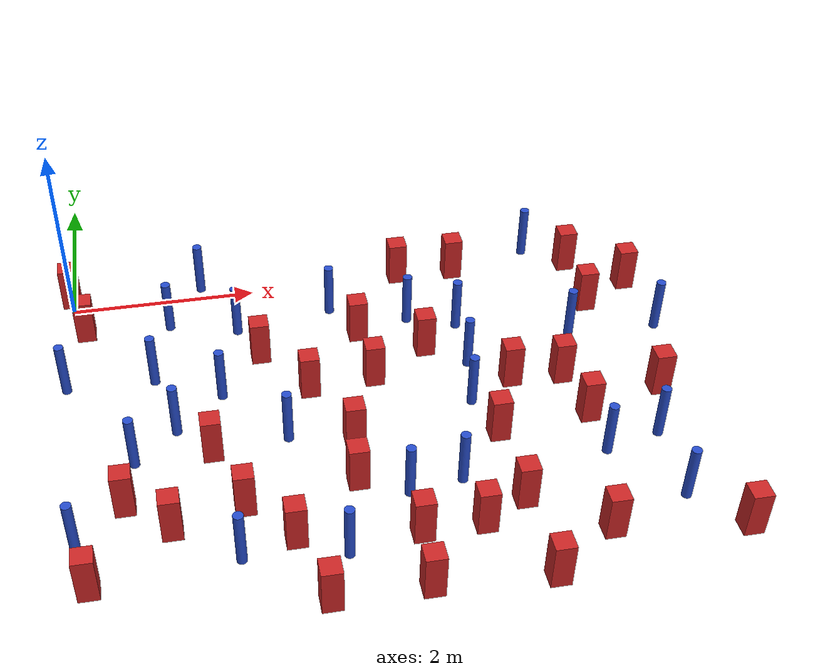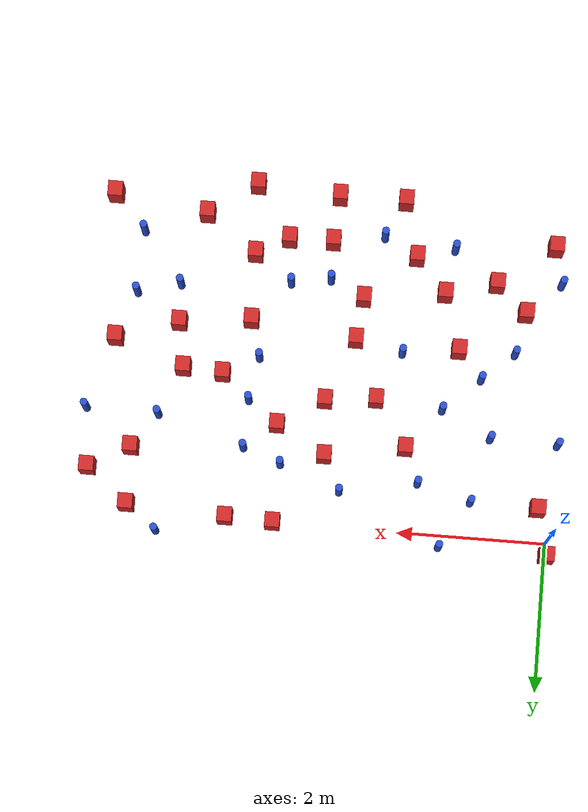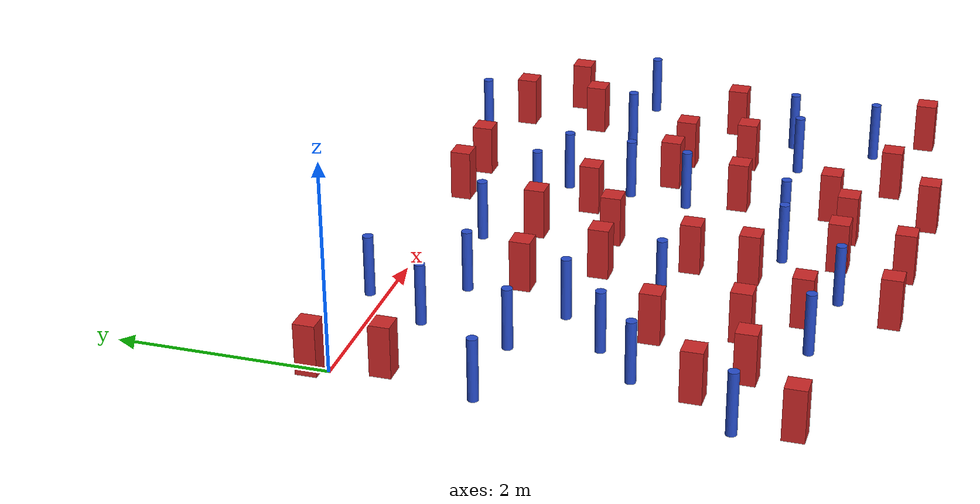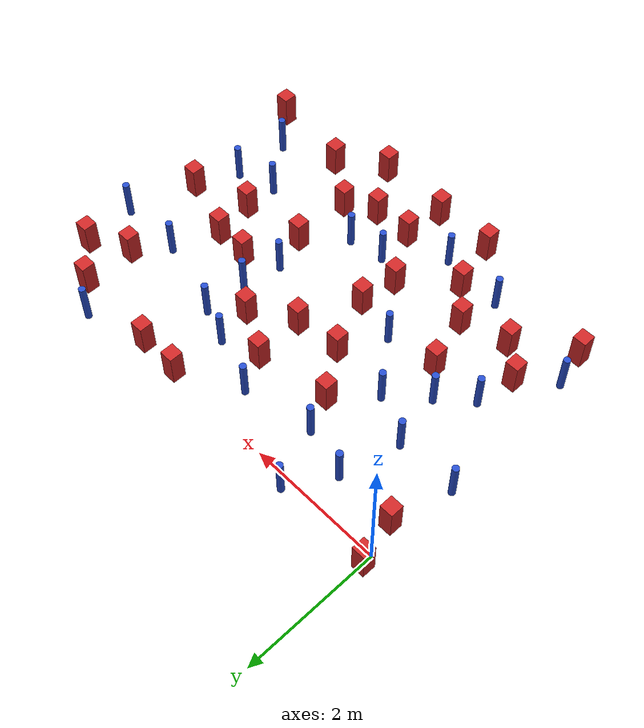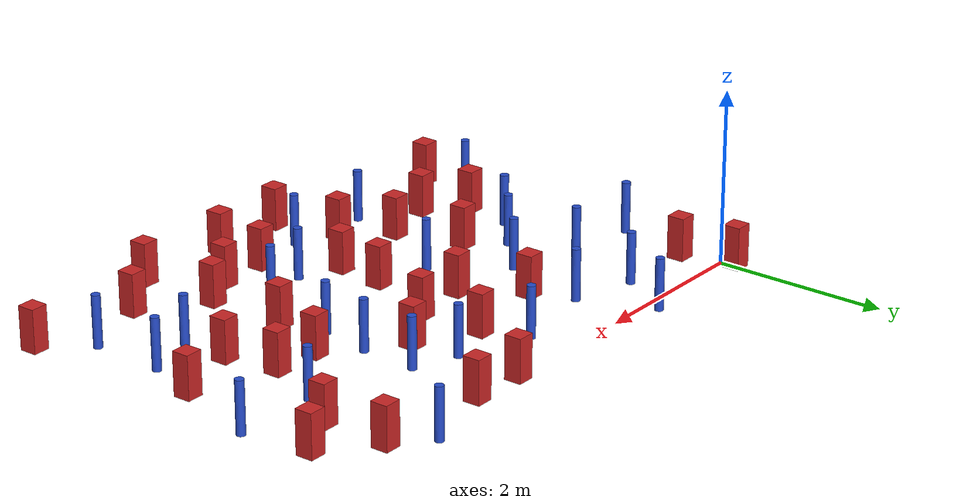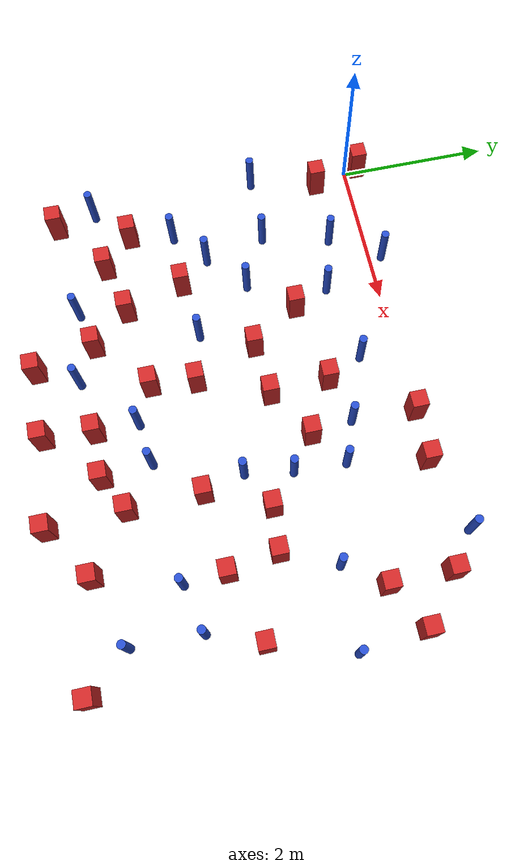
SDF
<sdf version="1.6">
 <model name="dense_13">
  <model name="square_post_obstacle4">
   <static>true</static>
   <pose>3.71863333824 -1.33802473438 1.91545236811e-07 -7.35059704564e-06 1.12565212e-07 2.39332434364e-05</pose>
   <link name="link">
    <pose>0 0 0.25 0 -0 0</pose>
    <inertial>
     <mass>100</mass>
     <inertia>
      <ixx>0.166667</ixx>
      <ixy>0</ixy>
      <ixz>0</ixz>
      <iyy>0.166667</iyy>
      <iyz>0</iyz>
      <izz>0.166667</izz>
     </inertia>
    </inertial>
    <collision name="collision"><geometry><box><size>.2 .2 .5</size></box></geometry></collision>
    <visual name="visual">
     <geometry><box><size>.2 .2 .5</size></box></geometry>
     <material>
      <script><name>Gazebo/Red</name><uri>file://media/materials/scripts/gazebo.material</uri></script>
     </material>
    </visual>
   </link>
  </model>
  <model name="square_post_obstacle7">
   <static>true</static>
   <pose>4.50447674542 -1.98061000335 1.91545236811e-07 -7.35059704564e-06 1.12565212e-07 2.39332434364e-05</pose>
   <link name="link">
    <pose>0 0 0.25 0 -0 0</pose>
    <inertial>
     <mass>100</mass>
     <inertia>
      <ixx>0.166667</ixx>
      <ixy>0</ixy>
      <ixz>0</ixz>
      <iyy>0.166667</iyy>
      <iyz>0</iyz>
      <izz>0.166667</izz>
     </inertia>
    </inertial>
    <collision name="collision"><geometry><box><size>.2 .2 .5</size></box></geometry></collision>
    <visual name="visual">
     <geometry><box><size>.2 .2 .5</size></box></geometry>
     <material>
      <script><name>Gazebo/Red</name><uri>file://media/materials/scripts/gazebo.material</uri></script>
     </material>
    </visual>
   </link>
  </model>
  <model name="pole_obstacle6">
   <static>true</static>
   <pose>-0.0801501112502 -1.33337683288 7.38925637345e-09 -8.47170692799e-08 1.24976765008e-08 -1.7451309302e-07</pose>
   <link name="link">
    <pose>0 0 0.3 0 -0 0</pose>
    <inertial>
     <mass>1</mass>
     <inertia><ixx>0.145833</ixx><ixy>0</ixy><ixz>0</ixz><iyy>0.145833</iyy><iyz>0</iyz><izz>0.125</izz></inertia>
    </inertial>
    <collision name="collision">
     <geometry><cylinder><radius>0.05</radius><length>.6</length></cylinder></geometry>
    </collision>
    <visual name="visual">
     <geometry><cylinder><radius>0.05</radius><length>.6</length></cylinder></geometry>
     <material>
      <script><name>Gazebo/Blue</name><uri>file://media/materials/scripts/gazebo.material</uri></script>
     </material>
    </visual>
   </link>
  </model>
  <model name="square_post_obstacle23">
   <static>true</static>
   <pose>4.17222592053 -2.74427034642 1.91545236811e-07 -7.35059704564e-06 1.12565212e-07 2.39332434364e-05</pose>
   <link name="link">
    <pose>0 0 0.25 0 -0 0</pose>
    <inertial>
     <mass>100</mass>
     <inertia>
      <ixx>0.166667</ixx>
      <ixy>0</ixy>
      <ixz>0</ixz>
      <iyy>0.166667</iyy>
      <iyz>0</iyz>
      <izz>0.166667</izz>
     </inertia>
    </inertial>
    <collision name="collision"><geometry><box><size>.2 .2 .5</size></box></geometry></collision>
    <visual name="visual">
     <geometry><box><size>.2 .2 .5</size></box></geometry>
     <material>
      <script><name>Gazebo/Red</name><uri>file://media/materials/scripts/gazebo.material</uri></script>
     </material>
    </visual>
   </link>
  </model>
  <model name="pole_obstacle22">
   <static>true</static>
   <pose>2.81704417577 -0.489775918221 7.38925637345e-09 -8.471706928e-08 1.2497676509e-08 -1.74513093016e-07</pose>
   <link name="link">
    <pose>0 0 0.3 0 -0 0</pose>
    <inertial>
     <mass>1</mass>
     <inertia><ixx>0.145833</ixx><ixy>0</ixy><ixz>0</ixz><iyy>0.145833</iyy><iyz>0</iyz><izz>0.125</izz></inertia>
    </inertial>
    <collision name="collision">
     <geometry><cylinder><radius>0.05</radius><length>.6</length></cylinder></geometry>
    </collision>
    <visual name="visual">
     <geometry><cylinder><radius>0.05</radius><length>.6</length></cylinder></geometry>
     <material>
      <script><name>Gazebo/Blue</name><uri>file://media/materials/scripts/gazebo.material</uri></script>
     </material>
    </visual>
   </link>
  </model>
  <model name="pole_obstacle23">
   <static>true</static>
   <pose>5.72053813355 -3.86543438608 7.38925637345e-09 -8.47170692798e-08 1.24976764937e-08 -1.74513093023e-07</pose>
   <link name="link">
    <pose>0 0 0.3 0 -0 0</pose>
    <inertial>
     <mass>1</mass>
     <inertia><ixx>0.145833</ixx><ixy>0</ixy><ixz>0</ixz><iyy>0.145833</iyy><iyz>0</iyz><izz>0.125</izz></inertia>
    </inertial>
    <collision name="collision">
     <geometry><cylinder><radius>0.05</radius><length>.6</length></cylinder></geometry>
    </collision>
    <visual name="visual">
     <geometry><cylinder><radius>0.05</radius><length>.6</length></cylinder></geometry>
     <material>
      <script><name>Gazebo/Blue</name><uri>file://media/materials/scripts/gazebo.material</uri></script>
     </material>
    </visual>
   </link>
  </model>
  <model name="pole_obstacle30">
   <static>true</static>
   <pose>2.09955300384 -2.43860249127 7.38925637345e-09 -8.47170692798e-08 1.24976764939e-08 -1.74513093025e-07</pose>
   <link name="link">
    <pose>0 0 0.3 0 -0 0</pose>
    <inertial>
     <mass>1</mass>
     <inertia><ixx>0.145833</ixx><ixy>0</ixy><ixz>0</ixz><iyy>0.145833</iyy><iyz>0</iyz><izz>0.125</izz></inertia>
    </inertial>
    <collision name="collision">
     <geometry><cylinder><radius>0.05</radius><length>.6</length></cylinder></geometry>
    </collision>
    <visual name="visual">
     <geometry><cylinder><radius>0.05</radius><length>.6</length></cylinder></geometry>
     <material>
      <script><name>Gazebo/Blue</name><uri>file://media/materials/scripts/gazebo.material</uri></script>
     </material>
    </visual>
   </link>
  </model>
  <model name="pole_obstacle40">
   <static>true</static>
   <pose>5.33174224511 -1.35963224394 7.38925637345e-09 -8.471706928e-08 1.24976765134e-08 -1.74513093015e-07</pose>
   <link name="link">
    <pose>0 0 0.3 0 -0 0</pose>
    <inertial>
     <mass>1</mass>
     <inertia><ixx>0.145833</ixx><ixy>0</ixy><ixz>0</ixz><iyy>0.145833</iyy><iyz>0</iyz><izz>0.125</izz></inertia>
    </inertial>
    <collision name="collision">
     <geometry><cylinder><radius>0.05</radius><length>.6</length></cylinder></geometry>
    </collision>
    <visual name="visual">
     <geometry><cylinder><radius>0.05</radius><length>.6</length></cylinder></geometry>
     <material>
      <script><name>Gazebo/Blue</name><uri>file://media/materials/scripts/gazebo.material</uri></script>
     </material>
    </visual>
   </link>
  </model>
  <model name="pole_obstacle43">
   <static>true</static>
   <pose>6.31140960115 -1.3834381084 7.38925637345e-09 -8.471706928e-08 1.24976765134e-08 -1.74513093015e-07</pose>
   <link name="link">
    <pose>0 0 0.3 0 -0 0</pose>
    <inertial>
     <mass>1</mass>
     <inertia><ixx>0.145833</ixx><ixy>0</ixy><ixz>0</ixz><iyy>0.145833</iyy><iyz>0</iyz><izz>0.125</izz></inertia>
    </inertial>
    <collision name="collision">
     <geometry><cylinder><radius>0.05</radius><length>.6</length></cylinder></geometry>
    </collision>
    <visual name="visual">
     <geometry><cylinder><radius>0.05</radius><length>.6</length></cylinder></geometry>
     <material>
      <script><name>Gazebo/Blue</name><uri>file://media/materials/scripts/gazebo.material</uri></script>
     </material>
    </visual>
   </link>
  </model>
  <model name="square_post_obstacle41">
   <static>true</static>
   <pose>2.19690369852 -4.53238713483 1.91545236811e-07 -7.35059704564e-06 1.12565212e-07 2.39332434364e-05</pose>
   <link name="link">
    <pose>0 0 0.25 0 -0 0</pose>
    <inertial>
     <mass>100</mass>
     <inertia>
      <ixx>0.166667</ixx>
      <ixy>0</ixy>
      <ixz>0</ixz>
      <iyy>0.166667</iyy>
      <iyz>0</iyz>
      <izz>0.166667</izz>
     </inertia>
    </inertial>
    <collision name="collision"><geometry><box><size>.2 .2 .5</size></box></geometry></collision>
    <visual name="visual">
     <geometry><box><size>.2 .2 .5</size></box></geometry>
     <material>
      <script><name>Gazebo/Red</name><uri>file://media/materials/scripts/gazebo.material</uri></script>
     </material>
    </visual>
   </link>
  </model>
  <model name="square_post_obstacle43">
   <static>true</static>
   <pose>0.135842933089 -0.454012735212 1.91545236811e-07 -7.35059704564e-06 1.12565212e-07 2.39332434364e-05</pose>
   <link name="link">
    <pose>0 0 0.25 0 -0 0</pose>
    <inertial>
     <mass>100</mass>
     <inertia>
      <ixx>0.166667</ixx>
      <ixy>0</ixy>
      <ixz>0</ixz>
      <iyy>0.166667</iyy>
      <iyz>0</iyz>
      <izz>0.166667</izz>
     </inertia>
    </inertial>
    <collision name="collision"><geometry><box><size>.2 .2 .5</size></box></geometry></collision>
    <visual name="visual">
     <geometry><box><size>.2 .2 .5</size></box></geometry>
     <material>
      <script><name>Gazebo/Red</name><uri>file://media/materials/scripts/gazebo.material</uri></script>
     </material>
    </visual>
   </link>
  </model>
  <model name="square_post_obstacle45">
   <static>true</static>
   <pose>4.18853118868 -3.66178340515 1.91545236811e-07 -7.35059704564e-06 1.12565212e-07 2.39332434364e-05</pose>
   <link name="link">
    <pose>0 0 0.25 0 -0 0</pose>
    <inertial>
     <mass>100</mass>
     <inertia>
      <ixx>0.166667</ixx>
      <ixy>0</ixy>
      <ixz>0</ixz>
      <iyy>0.166667</iyy>
      <iyz>0</iyz>
      <izz>0.166667</izz>
     </inertia>
    </inertial>
    <collision name="collision"><geometry><box><size>.2 .2 .5</size></box></geometry></collision>
    <visual name="visual">
     <geometry><box><size>.2 .2 .5</size></box></geometry>
     <material>
      <script><name>Gazebo/Red</name><uri>file://media/materials/scripts/gazebo.material</uri></script>
     </material>
    </visual>
   </link>
  </model>
  <model name="pole_obstacle47">
   <static>true</static>
   <pose>1.50661732768 -1.70029809373 7.38925637345e-09 -8.471706928e-08 1.24976765079e-08 -1.74513093017e-07</pose>
   <link name="link">
    <pose>0 0 0.3 0 -0 0</pose>
    <inertial>
     <mass>1</mass>
     <inertia><ixx>0.145833</ixx><ixy>0</ixy><ixz>0</ixz><iyy>0.145833</iyy><iyz>0</iyz><izz>0.125</izz></inertia>
    </inertial>
    <collision name="collision">
     <geometry><cylinder><radius>0.05</radius><length>.6</length></cylinder></geometry>
    </collision>
    <visual name="visual">
     <geometry><cylinder><radius>0.05</radius><length>.6</length></cylinder></geometry>
     <material>
      <script><name>Gazebo/Blue</name><uri>file://media/materials/scripts/gazebo.material</uri></script>
     </material>
    </visual>
   </link>
  </model>
  <model name="square_post_obstacle49">
   <static>true</static>
   <pose>4.22348359257 -4.61324119609 1.91545236811e-07 -7.35059704564e-06 1.12565212e-07 2.39332434364e-05</pose>
   <link name="link">
    <pose>0 0 0.25 0 -0 0</pose>
    <inertial>
     <mass>100</mass>
     <inertia>
      <ixx>0.166667</ixx>
      <ixy>0</ixy>
      <ixz>0</ixz>
      <iyy>0.166667</iyy>
      <iyz>0</iyz>
      <izz>0.166667</izz>
     </inertia>
    </inertial>
    <collision name="collision"><geometry><box><size>.2 .2 .5</size></box></geometry></collision>
    <visual name="visual">
     <geometry><box><size>.2 .2 .5</size></box></geometry>
     <material>
      <script><name>Gazebo/Red</name><uri>file://media/materials/scripts/gazebo.material</uri></script>
     </material>
    </visual>
   </link>
  </model>
  <model name="square_post_obstacle51">
   <static>true</static>
   <pose>5.98912921172 -2.36923768804 1.91545236811e-07 -7.35059704564e-06 1.12565212e-07 2.39332434364e-05</pose>
   <link name="link">
    <pose>0 0 0.25 0 -0 0</pose>
    <inertial>
     <mass>100</mass>
     <inertia>
      <ixx>0.166667</ixx>
      <ixy>0</ixy>
      <ixz>0</ixz>
      <iyy>0.166667</iyy>
      <iyz>0</iyz>
      <izz>0.166667</izz>
     </inertia>
    </inertial>
    <collision name="collision"><geometry><box><size>.2 .2 .5</size></box></geometry></collision>
    <visual name="visual">
     <geometry><box><size>.2 .2 .5</size></box></geometry>
     <material>
      <script><name>Gazebo/Red</name><uri>file://media/materials/scripts/gazebo.material</uri></script>
     </material>
    </visual>
   </link>
  </model>
  <model name="square_post_obstacle69">
   <static>true</static>
   <pose>3.74224842 -3.89838014834 1.91545236811e-07 -7.35059704564e-06 1.12565212e-07 2.39332434364e-05</pose>
   <link name="link">
    <pose>0 0 0.25 0 -0 0</pose>
    <inertial>
     <mass>100</mass>
     <inertia>
      <ixx>0.166667</ixx>
      <ixy>0</ixy>
      <ixz>0</ixz>
      <iyy>0.166667</iyy>
      <iyz>0</iyz>
      <izz>0.166667</izz>
     </inertia>
    </inertial>
    <collision name="collision"><geometry><box><size>.2 .2 .5</size></box></geometry></collision>
    <visual name="visual">
     <geometry><box><size>.2 .2 .5</size></box></geometry>
     <material>
      <script><name>Gazebo/Red</name><uri>file://media/materials/scripts/gazebo.material</uri></script>
     </material>
    </visual>
   </link>
  </model>
  <model name="square_post_obstacle71">
   <static>true</static>
   <pose>5.6562285807 -0.113850046416 1.91545236811e-07 -7.35059704564e-06 1.12565212e-07 2.39332434364e-05</pose>
   <link name="link">
    <pose>0 0 0.25 0 -0 0</pose>
    <inertial>
     <mass>100</mass>
     <inertia>
      <ixx>0.166667</ixx>
      <ixy>0</ixy>
      <ixz>0</ixz>
      <iyy>0.166667</iyy>
      <iyz>0</iyz>
      <izz>0.166667</izz>
     </inertia>
    </inertial>
    <collision name="collision"><geometry><box><size>.2 .2 .5</size></box></geometry></collision>
    <visual name="visual">
     <geometry><box><size>.2 .2 .5</size></box></geometry>
     <material>
      <script><name>Gazebo/Red</name><uri>file://media/materials/scripts/gazebo.material</uri></script>
     </material>
    </visual>
   </link>
  </model>
  <model name="square_post_obstacle75">
   <static>true</static>
   <pose>6.14947851651 -4.34877087692 1.91545236811e-07 -7.35059704564e-06 1.12565212e-07 2.39332434364e-05</pose>
   <link name="link">
    <pose>0 0 0.25 0 -0 0</pose>
    <inertial>
     <mass>100</mass>
     <inertia>
      <ixx>0.166667</ixx>
      <ixy>0</ixy>
      <ixz>0</ixz>
      <iyy>0.166667</iyy>
      <iyz>0</iyz>
      <izz>0.166667</izz>
     </inertia>
    </inertial>
    <collision name="collision"><geometry><box><size>.2 .2 .5</size></box></geometry></collision>
    <visual name="visual">
     <geometry><box><size>.2 .2 .5</size></box></geometry>
     <material>
      <script><name>Gazebo/Red</name><uri>file://media/materials/scripts/gazebo.material</uri></script>
     </material>
    </visual>
   </link>
  </model>
  <model name="pole_obstacle70">
   <static>true</static>
   <pose>4.14983361388 -0.992908050601 7.38925637345e-09 -8.47170692799e-08 1.24976765054e-08 -1.74513093018e-07</pose>
   <link name="link">
    <pose>0 0 0.3 0 -0 0</pose>
    <inertial>
     <mass>1</mass>
     <inertia><ixx>0.145833</ixx><ixy>0</ixy><ixz>0</ixz><iyy>0.145833</iyy><iyz>0</iyz><izz>0.125</izz></inertia>
    </inertial>
    <collision name="collision">
     <geometry><cylinder><radius>0.05</radius><length>.6</length></cylinder></geometry>
    </collision>
    <visual name="visual">
     <geometry><cylinder><radius>0.05</radius><length>.6</length></cylinder></geometry>
     <material>
      <script><name>Gazebo/Blue</name><uri>file://media/materials/scripts/gazebo.material</uri></script>
     </material>
    </visual>
   </link>
  </model>
  <model name="pole_obstacle84">
   <static>true</static>
   <pose>0.574053270509 -2.53474685124 7.38925637345e-09 -8.47170692799e-08 1.2497676509e-08 -1.74513093016e-07</pose>
   <link name="link">
    <pose>0 0 0.3 0 -0 0</pose>
    <inertial>
     <mass>1</mass>
     <inertia><ixx>0.145833</ixx><ixy>0</ixy><ixz>0</ixz><iyy>0.145833</iyy><iyz>0</iyz><izz>0.125</izz></inertia>
    </inertial>
    <collision name="collision">
     <geometry><cylinder><radius>0.05</radius><length>.6</length></cylinder></geometry>
    </collision>
    <visual name="visual">
     <geometry><cylinder><radius>0.05</radius><length>.6</length></cylinder></geometry>
     <material>
      <script><name>Gazebo/Blue</name><uri>file://media/materials/scripts/gazebo.material</uri></script>
     </material>
    </visual>
   </link>
  </model>
  <model name="pole_obstacle90">
   <static>true</static>
   <pose>1.47961067431 -3.91612197463 7.38925637345e-09 -8.47170692799e-08 1.24976765053e-08 -1.74513093017e-07</pose>
   <link name="link">
    <pose>0 0 0.3 0 -0 0</pose>
    <inertial>
     <mass>1</mass>
     <inertia><ixx>0.145833</ixx><ixy>0</ixy><ixz>0</ixz><iyy>0.145833</iyy><iyz>0</iyz><izz>0.125</izz></inertia>
    </inertial>
    <collision name="collision">
     <geometry><cylinder><radius>0.05</radius><length>.6</length></cylinder></geometry>
    </collision>
    <visual name="visual">
     <geometry><cylinder><radius>0.05</radius><length>.6</length></cylinder></geometry>
     <material>
      <script><name>Gazebo/Blue</name><uri>file://media/materials/scripts/gazebo.material</uri></script>
     </material>
    </visual>
   </link>
  </model>
  <model name="pole_obstacle98">
   <static>true</static>
   <pose>5.75214173576 -3.01406670248 7.38925637345e-09 -8.47170692798e-08 1.24976764937e-08 -1.74513093023e-07</pose>
   <link name="link">
    <pose>0 0 0.3 0 -0 0</pose>
    <inertial>
     <mass>1</mass>
     <inertia><ixx>0.145833</ixx><ixy>0</ixy><ixz>0</ixz><iyy>0.145833</iyy><iyz>0</iyz><izz>0.125</izz></inertia>
    </inertial>
    <collision name="collision">
     <geometry><cylinder><radius>0.05</radius><length>.6</length></cylinder></geometry>
    </collision>
    <visual name="visual">
     <geometry><cylinder><radius>0.05</radius><length>.6</length></cylinder></geometry>
     <material>
      <script><name>Gazebo/Blue</name><uri>file://media/materials/scripts/gazebo.material</uri></script>
     </material>
    </visual>
   </link>
  </model>
  <model name="pole_obstacle100">
   <static>true</static>
   <pose>3.67606983754 -3.29273047336 7.38925637345e-09 -8.47170692798e-08 1.24976764939e-08 -1.74513093025e-07</pose>
   <link name="link">
    <pose>0 0 0.3 0 -0 0</pose>
    <inertial>
     <mass>1</mass>
     <inertia><ixx>0.145833</ixx><ixy>0</ixy><ixz>0</ixz><iyy>0.145833</iyy><iyz>0</iyz><izz>0.125</izz></inertia>
    </inertial>
    <collision name="collision">
     <geometry><cylinder><radius>0.05</radius><length>.6</length></cylinder></geometry>
    </collision>
    <visual name="visual">
     <geometry><cylinder><radius>0.05</radius><length>.6</length></cylinder></geometry>
     <material>
      <script><name>Gazebo/Blue</name><uri>file://media/materials/scripts/gazebo.material</uri></script>
     </material>
    </visual>
   </link>
  </model>
  <model name="pole_obstacle103">
   <static>true</static>
   <pose>0.831314692516 -1.35470343554 7.38925637345e-09 -8.47170692799e-08 1.24976765033e-08 -1.7451309302e-07</pose>
   <link name="link">
    <pose>0 0 0.3 0 -0 0</pose>
    <inertial>
     <mass>1</mass>
     <inertia><ixx>0.145833</ixx><ixy>0</ixy><ixz>0</ixz><iyy>0.145833</iyy><iyz>0</iyz><izz>0.125</izz></inertia>
    </inertial>
    <collision name="collision">
     <geometry><cylinder><radius>0.05</radius><length>.6</length></cylinder></geometry>
    </collision>
    <visual name="visual">
     <geometry><cylinder><radius>0.05</radius><length>.6</length></cylinder></geometry>
     <material>
      <script><name>Gazebo/Blue</name><uri>file://media/materials/scripts/gazebo.material</uri></script>
     </material>
    </visual>
   </link>
  </model>
  <model name="square_post_obstacle95">
   <static>true</static>
   <pose>1.33881672779 -2.53437425877 1.91545236811e-07 -7.35059704564e-06 1.12565212e-07 2.39332434364e-05</pose>
   <link name="link">
    <pose>0 0 0.25 0 -0 0</pose>
    <inertial>
     <mass>100</mass>
     <inertia>
      <ixx>0.166667</ixx>
      <ixy>0</ixy>
      <ixz>0</ixz>
      <iyy>0.166667</iyy>
      <iyz>0</iyz>
      <izz>0.166667</izz>
     </inertia>
    </inertial>
    <collision name="collision"><geometry><box><size>.2 .2 .5</size></box></geometry></collision>
    <visual name="visual">
     <geometry><box><size>.2 .2 .5</size></box></geometry>
     <material>
      <script><name>Gazebo/Red</name><uri>file://media/materials/scripts/gazebo.material</uri></script>
     </material>
    </visual>
   </link>
  </model>
  <model name="square_post_obstacle97">
   <static>true</static>
   <pose>0.118160823223 -4.04125096551 1.91545236811e-07 -7.35059704564e-06 1.12565212e-07 2.39332434364e-05</pose>
   <link name="link">
    <pose>0 0 0.25 0 -0 0</pose>
    <inertial>
     <mass>100</mass>
     <inertia>
      <ixx>0.166667</ixx>
      <ixy>0</ixy>
      <ixz>0</ixz>
      <iyy>0.166667</iyy>
      <iyz>0</iyz>
      <izz>0.166667</izz>
     </inertia>
    </inertial>
    <collision name="collision"><geometry><box><size>.2 .2 .5</size></box></geometry></collision>
    <visual name="visual">
     <geometry><box><size>.2 .2 .5</size></box></geometry>
     <material>
      <script><name>Gazebo/Red</name><uri>file://media/materials/scripts/gazebo.material</uri></script>
     </material>
    </visual>
   </link>
  </model>
  <model name="square_post_obstacle103">
   <static>true</static>
   <pose>0.885248632562 -3.48122219986 1.91545236811e-07 -7.35059704564e-06 1.12565212e-07 2.39332434364e-05</pose>
   <link name="link">
    <pose>0 0 0.25 0 -0 0</pose>
    <inertial>
     <mass>100</mass>
     <inertia>
      <ixx>0.166667</ixx>
      <ixy>0</ixy>
      <ixz>0</ixz>
      <iyy>0.166667</iyy>
      <iyz>0</iyz>
      <izz>0.166667</izz>
     </inertia>
    </inertial>
    <collision name="collision"><geometry><box><size>.2 .2 .5</size></box></geometry></collision>
    <visual name="visual">
     <geometry><box><size>.2 .2 .5</size></box></geometry>
     <material>
      <script><name>Gazebo/Red</name><uri>file://media/materials/scripts/gazebo.material</uri></script>
     </material>
    </visual>
   </link>
  </model>
  <model name="square_post_obstacle112">
   <static>true</static>
   <pose>2.74129988262 -2.58109546138 1.91545236811e-07 -7.35059704564e-06 1.12565212e-07 2.39332434364e-05</pose>
   <link name="link">
    <pose>0 0 0.25 0 -0 0</pose>
    <inertial>
     <mass>100</mass>
     <inertia>
      <ixx>0.166667</ixx>
      <ixy>0</ixy>
      <ixz>0</ixz>
      <iyy>0.166667</iyy>
      <iyz>0</iyz>
      <izz>0.166667</izz>
     </inertia>
    </inertial>
    <collision name="collision"><geometry><box><size>.2 .2 .5</size></box></geometry></collision>
    <visual name="visual">
     <geometry><box><size>.2 .2 .5</size></box></geometry>
     <material>
      <script><name>Gazebo/Red</name><uri>file://media/materials/scripts/gazebo.material</uri></script>
     </material>
    </visual>
   </link>
  </model>
  <model name="pole_obstacle121">
   <static>true</static>
   <pose>4.02691803334 -2.23331481966 7.38925637345e-09 -8.47170692799e-08 1.24976765e-08 -1.7451309302e-07</pose>
   <link name="link">
    <pose>0 0 0.3 0 -0 0</pose>
    <inertial>
     <mass>1</mass>
     <inertia><ixx>0.145833</ixx><ixy>0</ixy><ixz>0</ixz><iyy>0.145833</iyy><iyz>0</iyz><izz>0.125</izz></inertia>
    </inertial>
    <collision name="collision">
     <geometry><cylinder><radius>0.05</radius><length>.6</length></cylinder></geometry>
    </collision>
    <visual name="visual">
     <geometry><cylinder><radius>0.05</radius><length>.6</length></cylinder></geometry>
     <material>
      <script><name>Gazebo/Blue</name><uri>file://media/materials/scripts/gazebo.material</uri></script>
     </material>
    </visual>
   </link>
  </model>
  <model name="square_post_obstacle119">
   <static>true</static>
   <pose>3.6766508005 -0.0095552116733 1.91545236811e-07 -7.35059704564e-06 1.12565212e-07 2.39332434364e-05</pose>
   <link name="link">
    <pose>0 0 0.25 0 -0 0</pose>
    <inertial>
     <mass>100</mass>
     <inertia>
      <ixx>0.166667</ixx>
      <ixy>0</ixy>
      <ixz>0</ixz>
      <iyy>0.166667</iyy>
      <iyz>0</iyz>
      <izz>0.166667</izz>
     </inertia>
    </inertial>
    <collision name="collision"><geometry><box><size>.2 .2 .5</size></box></geometry></collision>
    <visual name="visual">
     <geometry><box><size>.2 .2 .5</size></box></geometry>
     <material>
      <script><name>Gazebo/Red</name><uri>file://media/materials/scripts/gazebo.material</uri></script>
     </material>
    </visual>
   </link>
  </model>
  <model name="square_post_obstacle125">
   <static>true</static>
   <pose>5.14370532662 -2.6389546352 1.91545236811e-07 -7.35059704564e-06 1.12565212e-07 2.39332434364e-05</pose>
   <link name="link">
    <pose>0 0 0.25 0 -0 0</pose>
    <inertial>
     <mass>100</mass>
     <inertia>
      <ixx>0.166667</ixx>
      <ixy>0</ixy>
      <ixz>0</ixz>
      <iyy>0.166667</iyy>
      <iyz>0</iyz>
      <izz>0.166667</izz>
     </inertia>
    </inertial>
    <collision name="collision"><geometry><box><size>.2 .2 .5</size></box></geometry></collision>
    <visual name="visual">
     <geometry><box><size>.2 .2 .5</size></box></geometry>
     <material>
      <script><name>Gazebo/Red</name><uri>file://media/materials/scripts/gazebo.material</uri></script>
     </material>
    </visual>
   </link>
  </model>
  <model name="pole_obstacle152">
   <static>true</static>
   <pose>3.63625834366 -0.801707942494 7.38925637345e-09 -8.471706928e-08 1.24976765177e-08 -1.74513093012e-07</pose>
   <link name="link">
    <pose>0 0 0.3 0 -0 0</pose>
    <inertial>
     <mass>1</mass>
     <inertia><ixx>0.145833</ixx><ixy>0</ixy><ixz>0</ixz><iyy>0.145833</iyy><iyz>0</iyz><izz>0.125</izz></inertia>
    </inertial>
    <collision name="collision">
     <geometry><cylinder><radius>0.05</radius><length>.6</length></cylinder></geometry>
    </collision>
    <visual name="visual">
     <geometry><cylinder><radius>0.05</radius><length>.6</length></cylinder></geometry>
     <material>
      <script><name>Gazebo/Blue</name><uri>file://media/materials/scripts/gazebo.material</uri></script>
     </material>
    </visual>
   </link>
  </model>
  <model name="pole_obstacle154">
   <static>true</static>
   <pose>1.42945628992 0.160015379942 7.38925637345e-09 -8.471706928e-08 1.24976765118e-08 -1.74513093013e-07</pose>
   <link name="link">
    <pose>0 0 0.3 0 -0 0</pose>
    <inertial>
     <mass>1</mass>
     <inertia><ixx>0.145833</ixx><ixy>0</ixy><ixz>0</ixz><iyy>0.145833</iyy><iyz>0</iyz><izz>0.125</izz></inertia>
    </inertial>
    <collision name="collision">
     <geometry><cylinder><radius>0.05</radius><length>.6</length></cylinder></geometry>
    </collision>
    <visual name="visual">
     <geometry><cylinder><radius>0.05</radius><length>.6</length></cylinder></geometry>
     <material>
      <script><name>Gazebo/Blue</name><uri>file://media/materials/scripts/gazebo.material</uri></script>
     </material>
    </visual>
   </link>
  </model>
  <model name="pole_obstacle156">
   <static>true</static>
   <pose>4.1266174675 -1.64251256414 7.38925637345e-09 -8.471706928e-08 1.24976765134e-08 -1.74513093015e-07</pose>
   <link name="link">
    <pose>0 0 0.3 0 -0 0</pose>
    <inertial>
     <mass>1</mass>
     <inertia><ixx>0.145833</ixx><ixy>0</ixy><ixz>0</ixz><iyy>0.145833</iyy><iyz>0</iyz><izz>0.125</izz></inertia>
    </inertial>
    <collision name="collision">
     <geometry><cylinder><radius>0.05</radius><length>.6</length></cylinder></geometry>
    </collision>
    <visual name="visual">
     <geometry><cylinder><radius>0.05</radius><length>.6</length></cylinder></geometry>
     <material>
      <script><name>Gazebo/Blue</name><uri>file://media/materials/scripts/gazebo.material</uri></script>
     </material>
    </visual>
   </link>
  </model>
  <model name="square_post_obstacle149">
   <static>true</static>
   <pose>1.9678976579 -1.14912591674 1.91545236811e-07 -7.35059704564e-06 1.12565212e-07 2.39332434364e-05</pose>
   <link name="link">
    <pose>0 0 0.25 0 -0 0</pose>
    <inertial>
     <mass>100</mass>
     <inertia>
      <ixx>0.166667</ixx>
      <ixy>0</ixy>
      <ixz>0</ixz>
      <iyy>0.166667</iyy>
      <iyz>0</iyz>
      <izz>0.166667</izz>
     </inertia>
    </inertial>
    <collision name="collision"><geometry><box><size>.2 .2 .5</size></box></geometry></collision>
    <visual name="visual">
     <geometry><box><size>.2 .2 .5</size></box></geometry>
     <material>
      <script><name>Gazebo/Red</name><uri>file://media/materials/scripts/gazebo.material</uri></script>
     </material>
    </visual>
   </link>
  </model>
  <model name="square_post_obstacle151">
   <static>true</static>
   <pose>3.09723972489 -1.71734407023 1.91545236811e-07 -7.35059704564e-06 1.12565212e-07 2.39332434364e-05</pose>
   <link name="link">
    <pose>0 0 0.25 0 -0 0</pose>
    <inertial>
     <mass>100</mass>
     <inertia>
      <ixx>0.166667</ixx>
      <ixy>0</ixy>
      <ixz>0</ixz>
      <iyy>0.166667</iyy>
      <iyz>0</iyz>
      <izz>0.166667</izz>
     </inertia>
    </inertial>
    <collision name="collision"><geometry><box><size>.2 .2 .5</size></box></geometry></collision>
    <visual name="visual">
     <geometry><box><size>.2 .2 .5</size></box></geometry>
     <material>
      <script><name>Gazebo/Red</name><uri>file://media/materials/scripts/gazebo.material</uri></script>
     </material>
    </visual>
   </link>
  </model>
  <model name="pole_obstacle160">
   <static>true</static>
   <pose>5.1701030258 -3.16360257551 7.38925637345e-09 -8.47170692798e-08 1.24976764937e-08 -1.74513093023e-07</pose>
   <link name="link">
    <pose>0 0 0.3 0 -0 0</pose>
    <inertial>
     <mass>1</mass>
     <inertia><ixx>0.145833</ixx><ixy>0</ixy><ixz>0</ixz><iyy>0.145833</iyy><iyz>0</iyz><izz>0.125</izz></inertia>
    </inertial>
    <collision name="collision">
     <geometry><cylinder><radius>0.05</radius><length>.6</length></cylinder></geometry>
    </collision>
    <visual name="visual">
     <geometry><cylinder><radius>0.05</radius><length>.6</length></cylinder></geometry>
     <material>
      <script><name>Gazebo/Blue</name><uri>file://media/materials/scripts/gazebo.material</uri></script>
     </material>
    </visual>
   </link>
  </model>
  <model name="pole_obstacle163">
   <static>true</static>
   <pose>1.009382235 -2.15213785722 7.38925637345e-09 -8.471706928e-08 1.2497676505e-08 -1.74513093017e-07</pose>
   <link name="link">
    <pose>0 0 0.3 0 -0 0</pose>
    <inertial>
     <mass>1</mass>
     <inertia><ixx>0.145833</ixx><ixy>0</ixy><ixz>0</ixz><iyy>0.145833</iyy><iyz>0</iyz><izz>0.125</izz></inertia>
    </inertial>
    <collision name="collision">
     <geometry><cylinder><radius>0.05</radius><length>.6</length></cylinder></geometry>
    </collision>
    <visual name="visual">
     <geometry><cylinder><radius>0.05</radius><length>.6</length></cylinder></geometry>
     <material>
      <script><name>Gazebo/Blue</name><uri>file://media/materials/scripts/gazebo.material</uri></script>
     </material>
    </visual>
   </link>
  </model>
  <model name="square_post_obstacle156">
   <static>true</static>
   <pose>4.88239168183 -4.1635466338 1.91545236811e-07 -7.35059704564e-06 1.12565212e-07 2.39332434364e-05</pose>
   <link name="link">
    <pose>0 0 0.25 0 -0 0</pose>
    <inertial>
     <mass>100</mass>
     <inertia>
      <ixx>0.166667</ixx>
      <ixy>0</ixy>
      <ixz>0</ixz>
      <iyy>0.166667</iyy>
      <iyz>0</iyz>
      <izz>0.166667</izz>
     </inertia>
    </inertial>
    <collision name="collision"><geometry><box><size>.2 .2 .5</size></box></geometry></collision>
    <visual name="visual">
     <geometry><box><size>.2 .2 .5</size></box></geometry>
     <material>
      <script><name>Gazebo/Red</name><uri>file://media/materials/scripts/gazebo.material</uri></script>
     </material>
    </visual>
   </link>
  </model>
  <model name="square_post_obstacle157">
   <static>true</static>
   <pose>4.31847600752 -0.035368052901 1.91545236811e-07 -7.35059704564e-06 1.12565212e-07 2.39332434364e-05</pose>
   <link name="link">
    <pose>0 0 0.25 0 -0 0</pose>
    <inertial>
     <mass>100</mass>
     <inertia>
      <ixx>0.166667</ixx>
      <ixy>0</ixy>
      <ixz>0</ixz>
      <iyy>0.166667</iyy>
      <iyz>0</iyz>
      <izz>0.166667</izz>
     </inertia>
    </inertial>
    <collision name="collision"><geometry><box><size>.2 .2 .5</size></box></geometry></collision>
    <visual name="visual">
     <geometry><box><size>.2 .2 .5</size></box></geometry>
     <material>
      <script><name>Gazebo/Red</name><uri>file://media/materials/scripts/gazebo.material</uri></script>
     </material>
    </visual>
   </link>
  </model>
  <model name="square_post_obstacle158">
   <static>true</static>
   <pose>2.40881917801 -1.77914239485 1.91545236811e-07 -7.35059704564e-06 1.12565212e-07 2.39332434364e-05</pose>
   <link name="link">
    <pose>0 0 0.25 0 -0 0</pose>
    <inertial>
     <mass>100</mass>
     <inertia>
      <ixx>0.166667</ixx>
      <ixy>0</ixy>
      <ixz>0</ixz>
      <iyy>0.166667</iyy>
      <iyz>0</iyz>
      <izz>0.166667</izz>
     </inertia>
    </inertial>
    <collision name="collision"><geometry><box><size>.2 .2 .5</size></box></geometry></collision>
    <visual name="visual">
     <geometry><box><size>.2 .2 .5</size></box></geometry>
     <material>
      <script><name>Gazebo/Red</name><uri>file://media/materials/scripts/gazebo.material</uri></script>
     </material>
    </visual>
   </link>
  </model>
  <model name="square_post_obstacle160">
   <static>true</static>
   <pose>0.465923648906 -3.10475022817 1.91545236811e-07 -7.35059704564e-06 1.12565212e-07 2.39332434364e-05</pose>
   <link name="link">
    <pose>0 0 0.25 0 -0 0</pose>
    <inertial>
     <mass>100</mass>
     <inertia>
      <ixx>0.166667</ixx>
      <ixy>0</ixy>
      <ixz>0</ixz>
      <iyy>0.166667</iyy>
      <iyz>0</iyz>
      <izz>0.166667</izz>
     </inertia>
    </inertial>
    <collision name="collision"><geometry><box><size>.2 .2 .5</size></box></geometry></collision>
    <visual name="visual">
     <geometry><box><size>.2 .2 .5</size></box></geometry>
     <material>
      <script><name>Gazebo/Red</name><uri>file://media/materials/scripts/gazebo.material</uri></script>
     </material>
    </visual>
   </link>
  </model>
  <model name="pole_obstacle169">
   <static>true</static>
   <pose>1.04290027498 -0.475371203395 7.38925637345e-09 -8.47170692799e-08 1.24976765004e-08 -1.7451309302e-07</pose>
   <link name="link">
    <pose>0 0 0.3 0 -0 0</pose>
    <inertial>
     <mass>1</mass>
     <inertia><ixx>0.145833</ixx><ixy>0</ixy><ixz>0</ixz><iyy>0.145833</iyy><iyz>0</iyz><izz>0.125</izz></inertia>
    </inertial>
    <collision name="collision">
     <geometry><cylinder><radius>0.05</radius><length>.6</length></cylinder></geometry>
    </collision>
    <visual name="visual">
     <geometry><cylinder><radius>0.05</radius><length>.6</length></cylinder></geometry>
     <material>
      <script><name>Gazebo/Blue</name><uri>file://media/materials/scripts/gazebo.material</uri></script>
     </material>
    </visual>
   </link>
  </model>
  <model name="pole_obstacle178">
   <static>true</static>
   <pose>0.00317556264261 -3.53280103413 7.38925637345e-09 -8.471706928e-08 1.24976765128e-08 -1.74513093013e-07</pose>
   <link name="link">
    <pose>0 0 0.3 0 -0 0</pose>
    <inertial>
     <mass>1</mass>
     <inertia><ixx>0.145833</ixx><ixy>0</ixy><ixz>0</ixz><iyy>0.145833</iyy><iyz>0</iyz><izz>0.125</izz></inertia>
    </inertial>
    <collision name="collision">
     <geometry><cylinder><radius>0.05</radius><length>.6</length></cylinder></geometry>
    </collision>
    <visual name="visual">
     <geometry><cylinder><radius>0.05</radius><length>.6</length></cylinder></geometry>
     <material>
      <script><name>Gazebo/Blue</name><uri>file://media/materials/scripts/gazebo.material</uri></script>
     </material>
    </visual>
   </link>
  </model>
  <model name="square_post_obstacle169">
   <static>true</static>
   <pose>6.21876925951 -0.578064690758 1.91545236811e-07 -7.35059704564e-06 1.12565212e-07 2.39332434364e-05</pose>
   <link name="link">
    <pose>0 0 0.25 0 -0 0</pose>
    <inertial>
     <mass>100</mass>
     <inertia>
      <ixx>0.166667</ixx>
      <ixy>0</ixy>
      <ixz>0</ixz>
      <iyy>0.166667</iyy>
      <iyz>0</iyz>
      <izz>0.166667</izz>
     </inertia>
    </inertial>
    <collision name="collision"><geometry><box><size>.2 .2 .5</size></box></geometry></collision>
    <visual name="visual">
     <geometry><box><size>.2 .2 .5</size></box></geometry>
     <material>
      <script><name>Gazebo/Red</name><uri>file://media/materials/scripts/gazebo.material</uri></script>
     </material>
    </visual>
   </link>
  </model>
  <model name="pole_obstacle181">
   <static>true</static>
   <pose>5.24224742724 0.219156109639 7.38925637345e-09 -8.471706928e-08 1.24976765136e-08 -1.74513093014e-07</pose>
   <link name="link">
    <pose>0 0 0.3 0 -0 0</pose>
    <inertial>
     <mass>1</mass>
     <inertia><ixx>0.145833</ixx><ixy>0</ixy><ixz>0</ixz><iyy>0.145833</iyy><iyz>0</iyz><izz>0.125</izz></inertia>
    </inertial>
    <collision name="collision">
     <geometry><cylinder><radius>0.05</radius><length>.6</length></cylinder></geometry>
    </collision>
    <visual name="visual">
     <geometry><cylinder><radius>0.05</radius><length>.6</length></cylinder></geometry>
     <material>
      <script><name>Gazebo/Blue</name><uri>file://media/materials/scripts/gazebo.material</uri></script>
     </material>
    </visual>
   </link>
  </model>
  <model name="pole_obstacle183">
   <static>true</static>
   <pose>1.7680023414 -0.678849287434 7.38925637345e-09 -8.47170692799e-08 1.24976765075e-08 -1.74513093017e-07</pose>
   <link name="link">
    <pose>0 0 0.3 0 -0 0</pose>
    <inertial>
     <mass>1</mass>
     <inertia><ixx>0.145833</ixx><ixy>0</ixy><ixz>0</ixz><iyy>0.145833</iyy><iyz>0</iyz><izz>0.125</izz></inertia>
    </inertial>
    <collision name="collision">
     <geometry><cylinder><radius>0.05</radius><length>.6</length></cylinder></geometry>
    </collision>
    <visual name="visual">
     <geometry><cylinder><radius>0.05</radius><length>.6</length></cylinder></geometry>
     <material>
      <script><name>Gazebo/Blue</name><uri>file://media/materials/scripts/gazebo.material</uri></script>
     </material>
    </visual>
   </link>
  </model>
  <model name="square_post_obstacle180">
   <static>true</static>
   <pose>5.65973637984 -0.888152058139 1.91545236811e-07 -7.35059704564e-06 1.12565212e-07 2.39332434364e-05</pose>
   <link name="link">
    <pose>0 0 0.25 0 -0 0</pose>
    <inertial>
     <mass>100</mass>
     <inertia>
      <ixx>0.166667</ixx>
      <ixy>0</ixy>
      <ixz>0</ixz>
      <iyy>0.166667</iyy>
      <iyz>0</iyz>
      <izz>0.166667</izz>
     </inertia>
    </inertial>
    <collision name="collision"><geometry><box><size>.2 .2 .5</size></box></geometry></collision>
    <visual name="visual">
     <geometry><box><size>.2 .2 .5</size></box></geometry>
     <material>
      <script><name>Gazebo/Red</name><uri>file://media/materials/scripts/gazebo.material</uri></script>
     </material>
    </visual>
   </link>
  </model>
  <model name="square_post_obstacle186">
   <static>true</static>
   <pose>1.5776471744 -3.29787874085 1.91545236811e-07 -7.35059704564e-06 1.12565212e-07 2.39332434364e-05</pose>
   <link name="link">
    <pose>0 0 0.25 0 -0 0</pose>
    <inertial>
     <mass>100</mass>
     <inertia>
      <ixx>0.166667</ixx>
      <ixy>0</ixy>
      <ixz>0</ixz>
      <iyy>0.166667</iyy>
      <iyz>0</iyz>
      <izz>0.166667</izz>
     </inertia>
    </inertial>
    <collision name="collision"><geometry><box><size>.2 .2 .5</size></box></geometry></collision>
    <visual name="visual">
     <geometry><box><size>.2 .2 .5</size></box></geometry>
     <material>
      <script><name>Gazebo/Red</name><uri>file://media/materials/scripts/gazebo.material</uri></script>
     </material>
    </visual>
   </link>
  </model>
  <model name="square_post_obstacle191">
   <static>true</static>
   <pose>-0.0201159647852 0.167614884121 1.91545236811e-07 -7.35059704564e-06 1.12565212e-07 2.39332434364e-05</pose>
   <link name="link">
    <pose>0 0 0.25 0 -0 0</pose>
    <inertial>
     <mass>100</mass>
     <inertia>
      <ixx>0.166667</ixx>
      <ixy>0</ixy>
      <ixz>0</ixz>
      <iyy>0.166667</iyy>
      <iyz>0</iyz>
      <izz>0.166667</izz>
     </inertia>
    </inertial>
    <collision name="collision"><geometry><box><size>.2 .2 .5</size></box></geometry></collision>
    <visual name="visual">
     <geometry><box><size>.2 .2 .5</size></box></geometry>
     <material>
      <script><name>Gazebo/Red</name><uri>file://media/materials/scripts/gazebo.material</uri></script>
     </material>
    </visual>
   </link>
  </model>
  <model name="square_post_obstacle194">
   <static>true</static>
   <pose>2.67621945266 -3.15454423479 1.91545236811e-07 -7.35059704564e-06 1.12565212e-07 2.39332434364e-05</pose>
   <link name="link">
    <pose>0 0 0.25 0 -0 0</pose>
    <inertial>
     <mass>100</mass>
     <inertia>
      <ixx>0.166667</ixx>
      <ixy>0</ixy>
      <ixz>0</ixz>
      <iyy>0.166667</iyy>
      <iyz>0</iyz>
      <izz>0.166667</izz>
     </inertia>
    </inertial>
    <collision name="collision"><geometry><box><size>.2 .2 .5</size></box></geometry></collision>
    <visual name="visual">
     <geometry><box><size>.2 .2 .5</size></box></geometry>
     <material>
      <script><name>Gazebo/Red</name><uri>file://media/materials/scripts/gazebo.material</uri></script>
     </material>
    </visual>
   </link>
  </model>
  <model name="pole_obstacle201">
   <static>true</static>
   <pose>3.13782047504 -3.37505679537 7.38925637345e-09 -8.47170692798e-08 1.24976764939e-08 -1.74513093025e-07</pose>
   <link name="link">
    <pose>0 0 0.3 0 -0 0</pose>
    <inertial>
     <mass>1</mass>
     <inertia><ixx>0.145833</ixx><ixy>0</ixy><ixz>0</ixz><iyy>0.145833</iyy><iyz>0</iyz><izz>0.125</izz></inertia>
    </inertial>
    <collision name="collision">
     <geometry><cylinder><radius>0.05</radius><length>.6</length></cylinder></geometry>
    </collision>
    <visual name="visual">
     <geometry><cylinder><radius>0.05</radius><length>.6</length></cylinder></geometry>
     <material>
      <script><name>Gazebo/Blue</name><uri>file://media/materials/scripts/gazebo.material</uri></script>
     </material>
    </visual>
   </link>
  </model>
  <model name="pole_obstacle210">
   <static>true</static>
   <pose>2.44800761284 -4.02085416439 7.38925637345e-09 -8.47170692799e-08 1.24976764995e-08 -1.74513093021e-07</pose>
   <link name="link">
    <pose>0 0 0.3 0 -0 0</pose>
    <inertial>
     <mass>1</mass>
     <inertia><ixx>0.145833</ixx><ixy>0</ixy><ixz>0</ixz><iyy>0.145833</iyy><iyz>0</iyz><izz>0.125</izz></inertia>
    </inertial>
    <collision name="collision">
     <geometry><cylinder><radius>0.05</radius><length>.6</length></cylinder></geometry>
    </collision>
    <visual name="visual">
     <geometry><cylinder><radius>0.05</radius><length>.6</length></cylinder></geometry>
     <material>
      <script><name>Gazebo/Blue</name><uri>file://media/materials/scripts/gazebo.material</uri></script>
     </material>
    </visual>
   </link>
  </model>
  <model name="square_post_obstacle198">
   <static>true</static>
   <pose>5.04123226054 -2.02048120841 1.91545236811e-07 -7.35059704564e-06 1.12565212e-07 2.39332434364e-05</pose>
   <link name="link">
    <pose>0 0 0.25 0 -0 0</pose>
    <inertial>
     <mass>100</mass>
     <inertia>
      <ixx>0.166667</ixx>
      <ixy>0</ixy>
      <ixz>0</ixz>
      <iyy>0.166667</iyy>
      <iyz>0</iyz>
      <izz>0.166667</izz>
     </inertia>
    </inertial>
    <collision name="collision"><geometry><box><size>.2 .2 .5</size></box></geometry></collision>
    <visual name="visual">
     <geometry><box><size>.2 .2 .5</size></box></geometry>
     <material>
      <script><name>Gazebo/Red</name><uri>file://media/materials/scripts/gazebo.material</uri></script>
     </material>
    </visual>
   </link>
  </model>
  <model name="square_post_obstacle202">
   <static>true</static>
   <pose>3.09993291642 -4.53615091671 1.91545236811e-07 -7.35059704564e-06 1.12565212e-07 2.39332434364e-05</pose>
   <link name="link">
    <pose>0 0 0.25 0 -0 0</pose>
    <inertial>
     <mass>100</mass>
     <inertia>
      <ixx>0.166667</ixx>
      <ixy>0</ixy>
      <ixz>0</ixz>
      <iyy>0.166667</iyy>
      <iyz>0</iyz>
      <izz>0.166667</izz>
     </inertia>
    </inertial>
    <collision name="collision"><geometry><box><size>.2 .2 .5</size></box></geometry></collision>
    <visual name="visual">
     <geometry><box><size>.2 .2 .5</size></box></geometry>
     <material>
      <script><name>Gazebo/Red</name><uri>file://media/materials/scripts/gazebo.material</uri></script>
     </material>
    </visual>
   </link>
  </model>
  <model name="square_post_obstacle208">
   <static>true</static>
   <pose>3.05267864734 -0.965672630118 1.91545236811e-07 -7.35059704564e-06 1.12565212e-07 2.39332434364e-05</pose>
   <link name="link">
    <pose>0 0 0.25 0 -0 0</pose>
    <inertial>
     <mass>100</mass>
     <inertia>
      <ixx>0.166667</ixx>
      <ixy>0</ixy>
      <ixz>0</ixz>
      <iyy>0.166667</iyy>
      <iyz>0</iyz>
      <izz>0.166667</izz>
     </inertia>
    </inertial>
    <collision name="collision"><geometry><box><size>.2 .2 .5</size></box></geometry></collision>
    <visual name="visual">
     <geometry><box><size>.2 .2 .5</size></box></geometry>
     <material>
      <script><name>Gazebo/Red</name><uri>file://media/materials/scripts/gazebo.material</uri></script>
     </material>
    </visual>
   </link>
  </model>
  <model name="square_post_obstacle226">
   <static>true</static>
   <pose>1.99412981843 -3.77247739307 1.91545236811e-07 -7.35059704564e-06 1.12565212e-07 2.39332434364e-05</pose>
   <link name="link">
    <pose>0 0 0.25 0 -0 0</pose>
    <inertial>
     <mass>100</mass>
     <inertia>
      <ixx>0.166667</ixx>
      <ixy>0</ixy>
      <ixz>0</ixz>
      <iyy>0.166667</iyy>
      <iyz>0</iyz>
      <izz>0.166667</izz>
     </inertia>
    </inertial>
    <collision name="collision"><geometry><box><size>.2 .2 .5</size></box></geometry></collision>
    <visual name="visual">
     <geometry><box><size>.2 .2 .5</size></box></geometry>
     <material>
      <script><name>Gazebo/Red</name><uri>file://media/materials/scripts/gazebo.material</uri></script>
     </material>
    </visual>
   </link>
  </model>
  <model name="square_post_obstacle242">
   <static>true</static>
   <pose>3.1463699648 -3.90606001192 1.91545236811e-07 -7.35059704564e-06 1.12565212e-07 2.39332434364e-05</pose>
   <link name="link">
    <pose>0 0 0.25 0 -0 0</pose>
    <inertial>
     <mass>100</mass>
     <inertia>
      <ixx>0.166667</ixx>
      <ixy>0</ixy>
      <ixz>0</ixz>
      <iyy>0.166667</iyy>
      <iyz>0</iyz>
      <izz>0.166667</izz>
     </inertia>
    </inertial>
    <collision name="collision"><geometry><box><size>.2 .2 .5</size></box></geometry></collision>
    <visual name="visual">
     <geometry><box><size>.2 .2 .5</size></box></geometry>
     <material>
      <script><name>Gazebo/Red</name><uri>file://media/materials/scripts/gazebo.material</uri></script>
     </material>
    </visual>
   </link>
  </model>
 </model>
</sdf>
